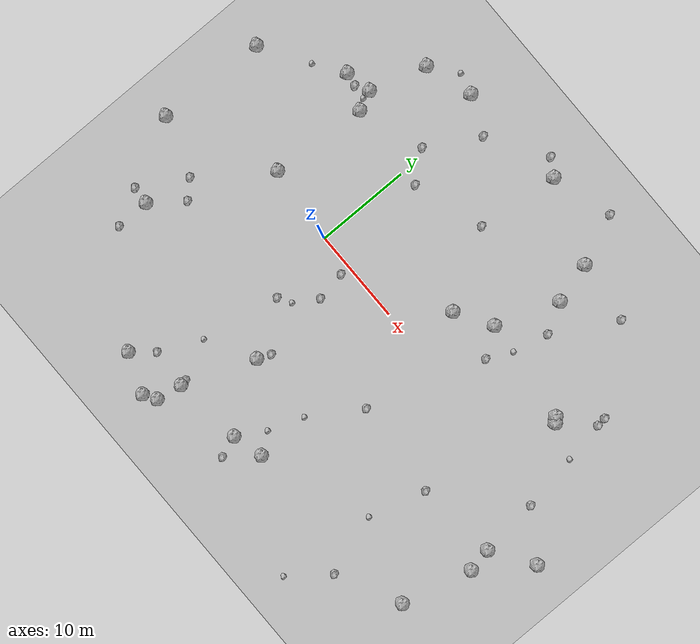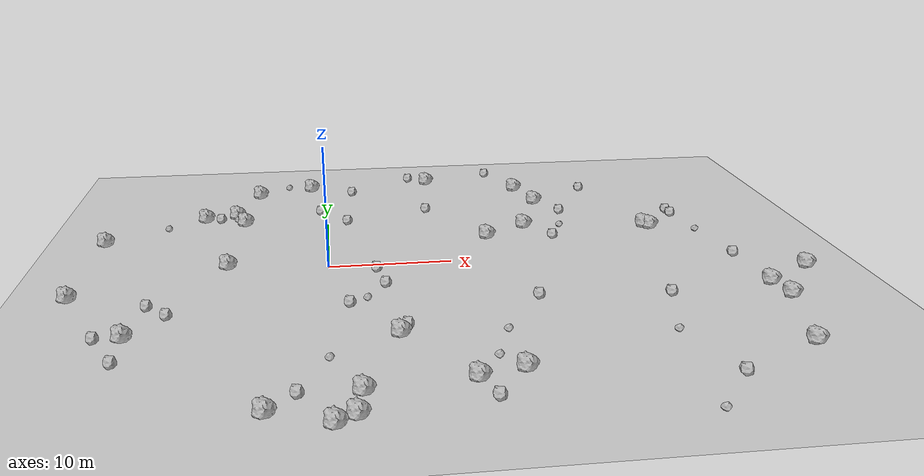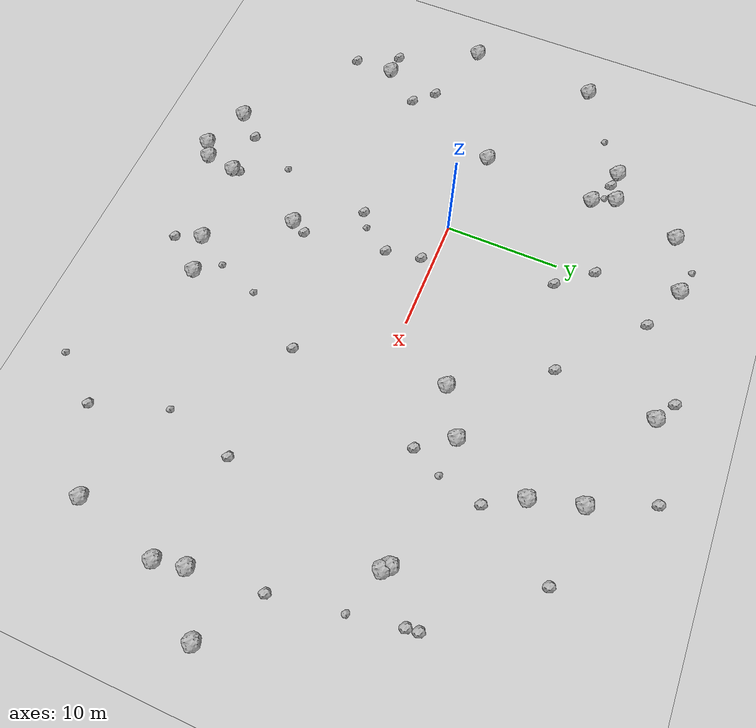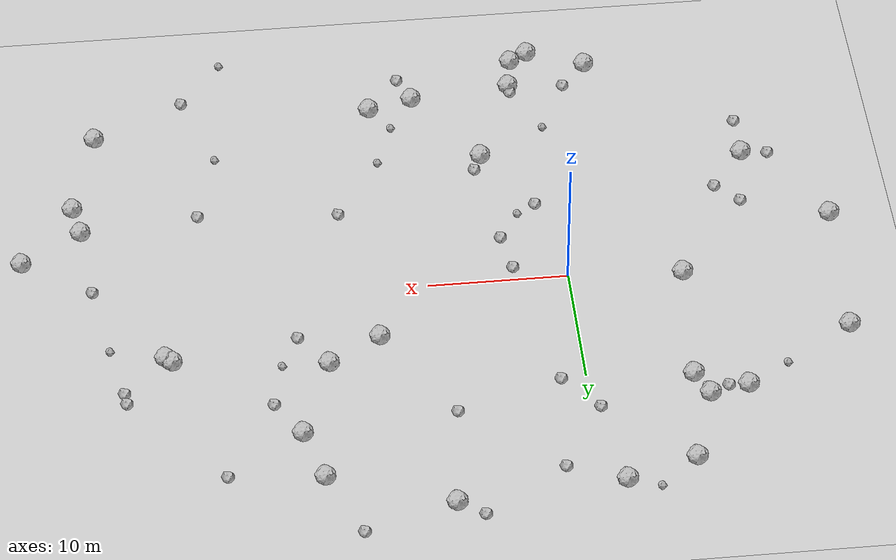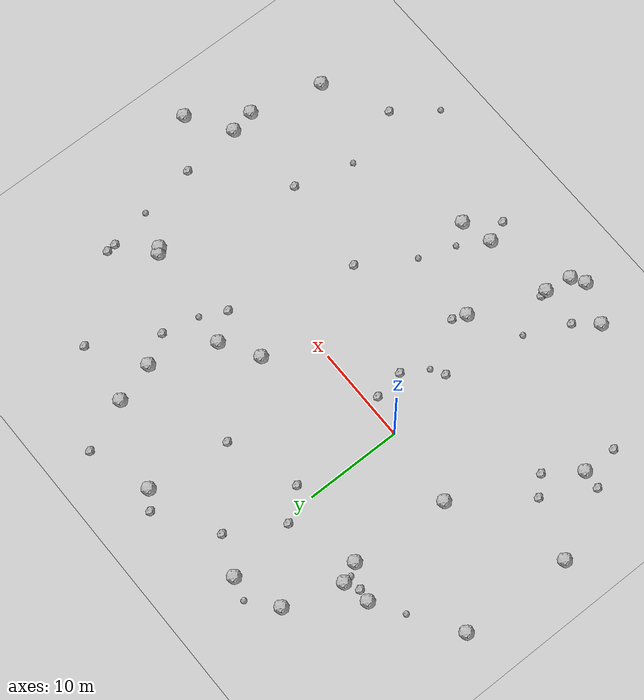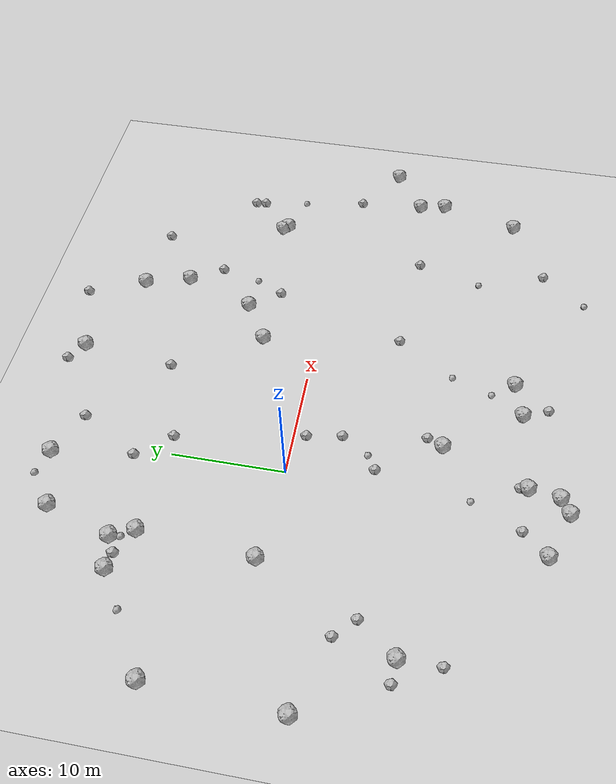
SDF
<sdf version="1.6">
 <world name="default">
  <include><uri>model://custom_ground</uri></include>
  <include><uri>model://sun</uri></include>
  <model name="rock1_0_0">
   <include><uri>model://rock1</uri><pose>-11.027764039563719 12.284014115505343 0.5 0 0 0</pose></include>
  </model>
  <model name="rock1_0_1">
   <include><uri>model://rock1</uri><pose>28.939537956805076 5.736446597086946 0.5 0 0 0</pose></include>
  </model>
  <model name="rock1_0_2">
   <include><uri>model://rock1</uri><pose>-1.5107407961260257 20.366758260181584 0.5 0 0 0</pose></include>
  </model>
  <model name="rock1_0_3">
   <include><uri>model://rock1</uri><pose>0.2570385839010747 -23.85550155937903 0.5 0 0 0</pose></include>
  </model>
  <model name="rock1_0_4">
   <include><uri>model://rock1</uri><pose>1.586014061621853 -23.04541576442167 0.5 0 0 0</pose></include>
  </model>
  <model name="rock1_0_5">
   <include><uri>model://rock1</uri><pose>-8.062970826868872 0.7424308620066782 0.5 0 0 0</pose></include>
  </model>
  <model name="rock1_0_6">
   <include><uri>model://rock1</uri><pose>13.891608856421989 5.073443191869288 0.5 0 0 0</pose></include>
  </model>
  <model name="rock1_0_7">
   <include><uri>model://rock1</uri><pose>2.0278214352170387 -20.346743775395076 0.5 0 0 0</pose></include>
  </model>
  <model name="rock1_0_8">
   <include><uri>model://rock1</uri><pose>38.588197003291874 -4.716279543927307 0.5 0 0 0</pose></include>
  </model>
  <model name="rock1_0_9">
   <include><uri>model://rock1</uri><pose>28.4831234992264 6.19119665853318 0.5 0 0 0</pose></include>
  </model>
  <model name="rock1_0_10">
   <include><uri>model://rock1</uri><pose>-14.068442878592693 -11.358586132357999 0.5 0 0 0</pose></include>
  </model>
  <model name="rock1_0_11">
   <include><uri>model://rock1</uri><pose>4.895437883553807 -12.873714850114805 0.5 0 0 0</pose></include>
  </model>
  <model name="rock1_0_12">
   <include><uri>model://rock1</uri><pose>-7.391547562215173 10.86112403371692 0.5 0 0 0</pose></include>
  </model>
  <model name="rock1_0_13">
   <include><uri>model://rock1</uri><pose>-19.40093982729339 -4.275042283149485 0.5 0 0 0</pose></include>
  </model>
  <model name="rock1_0_14">
   <include><uri>model://rock1</uri><pose>34.745237593558706 -10.069673632421463 0.5 0 0 0</pose></include>
  </model>
  <model name="rock1_0_15">
   <include><uri>model://rock1</uri><pose>10.15944948979963 21.32894314596298 0.5 0 0 0</pose></include>
  </model>
  <model name="rock1_0_16">
   <include><uri>model://rock1</uri><pose>9.331026613413734 -19.568326153727796 0.5 0 0 0</pose></include>
  </model>
  <model name="rock1_0_17">
   <include><uri>model://rock1</uri><pose>-8.274690872943726 12.860050784481224 0.5 0 0 0</pose></include>
  </model>
  <model name="rock1_0_18">
   <include><uri>model://rock1</uri><pose>17.632937537088516 7.346693989860569 0.5 0 0 0</pose></include>
  </model>
  <model name="rock1_0_19">
   <include><uri>model://rock1</uri><pose>12.554505665294208 -18.706540950473986 0.5 0 0 0</pose></include>
  </model>
  <model name="rock1_0_20">
   <include><uri>model://rock1</uri><pose>32.85350191048273 -17.44762869332425 0.5 0 0 0</pose></include>
  </model>
  <model name="rock1_0_21">
   <include><uri>model://rock1</uri><pose>18.788839518924974 18.110436376438862 0.5 0 0 0</pose></include>
  </model>
  <model name="rock1_0_22">
   <include><uri>model://rock1</uri><pose>-3.8858278749136304 -22.21808106653757 0.5 0 0 0</pose></include>
  </model>
  <model name="rock1_0_23">
   <include><uri>model://rock1</uri><pose>34.26534758210676 -7.543714053345834 0.5 0 0 0</pose></include>
  </model>
  <model name="rock1_0_24">
   <include><uri>model://rock1</uri><pose>-18.94947749458981 7.14842963456703 0.5 0 0 0</pose></include>
  </model>
  <model name="rock1_0_25">
   <include><uri>model://rock1</uri><pose>-6.4913171606933915 18.771355914047888 0.5 0 0 0</pose></include>
  </model>
  <model name="rock1_0_26">
   <include><uri>model://rock1</uri><pose>19.976429062862522 13.889876490020256 0.5 0 0 0</pose></include>
  </model>
  <model name="rock2_0_0">
   <include><uri>model://rock2</uri><pose>-11.63903249460002 -8.058631580797233 0.3 0 0 0</pose></include>
  </model>
  <model name="rock2_0_1">
   <include><uri>model://rock2</uri><pose>26.284740418298078 -20.804069318388834 0.3 0 0 0</pose></include>
  </model>
  <model name="rock2_0_2">
   <include><uri>model://rock2</uri><pose>19.61055265498777 4.568744306605829 0.3 0 0 0</pose></include>
  </model>
  <model name="rock2_0_3">
   <include><uri>model://rock2</uri><pose>25.33818112440329 17.43913012056167 0.3 0 0 0</pose></include>
  </model>
  <model name="rock2_0_4">
   <include><uri>model://rock2</uri><pose>2.449323907576993 18.68029120720989 0.3 0 0 0</pose></include>
  </model>
  <model name="rock2_0_5">
   <include><uri>model://rock2</uri><pose>-13.288587860979135 -6.361905748541496 0.3 0 0 0</pose></include>
  </model>
  <model name="rock2_0_6">
   <include><uri>model://rock2</uri><pose>8.351920678366273 22.51527897836027 0.3 0 0 0</pose></include>
  </model>
  <model name="rock2_0_7">
   <include><uri>model://rock2</uri><pose>-14.098320259304673 -14.89463491351524 0.3 0 0 0</pose></include>
  </model>
  <model name="rock2_0_8">
   <include><uri>model://rock2</uri><pose>31.785878052973445 9.83367118325826 0.3 0 0 0</pose></include>
  </model>
  <model name="rock2_0_9">
   <include><uri>model://rock2</uri><pose>4.370575834656371 -4.171433876113856 0.3 0 0 0</pose></include>
  </model>
  <model name="rock2_0_10">
   <include><uri>model://rock2</uri><pose>33.67975759322387 -1.407109420900671 0.3 0 0 0</pose></include>
  </model>
  <model name="rock2_0_11">
   <include><uri>model://rock2</uri><pose>21.712163400593596 10.89432187464 0.3 0 0 0</pose></include>
  </model>
  <model name="rock2_0_12">
   <include><uri>model://rock2</uri><pose>-0.6161595411897558 13.277080820130386 0.3 0 0 0</pose></include>
  </model>
  <model name="rock2_0_13">
   <include><uri>model://rock2</uri><pose>-16.02030685697866 -11.233019874052651 0.3 0 0 0</pose></include>
  </model>
  <model name="rock2_0_14">
   <include><uri>model://rock2</uri><pose>16.579087965963048 23.330777719990223 0.3 0 0 0</pose></include>
  </model>
  <model name="rock2_0_15">
   <include><uri>model://rock2</uri><pose>1.780808796740562 10.354297105642708 0.3 0 0 0</pose></include>
  </model>
  <model name="rock2_0_16">
   <include><uri>model://rock2</uri><pose>25.8109693475485 -8.493878163552672 0.3 0 0 0</pose></include>
  </model>
  <model name="rock2_0_17">
   <include><uri>model://rock2</uri><pose>9.210547826962387 12.78155190674105 0.3 0 0 0</pose></include>
  </model>
  <model name="rock2_0_18">
   <include><uri>model://rock2</uri><pose>10.167003569026363 -21.84647284312875 0.3 0 0 0</pose></include>
  </model>
  <model name="rock2_0_19">
   <include><uri>model://rock2</uri><pose>-9.685283023935751 12.105426964600298 0.3 0 0 0</pose></include>
  </model>
  <model name="rock2_0_20">
   <include><uri>model://rock2</uri><pose>3.8360450990637496 -1.0449101710525106 0.3 0 0 0</pose></include>
  </model>
  <model name="rock2_0_21">
   <include><uri>model://rock2</uri><pose>1.5150532432947088 -7.440881385105641 0.3 0 0 0</pose></include>
  </model>
  <model name="rock2_0_22">
   <include><uri>model://rock2</uri><pose>31.898649528236845 8.85688587566014 0.3 0 0 0</pose></include>
  </model>
  <model name="rock2_0_23">
   <include><uri>model://rock2</uri><pose>5.465736150114992 -11.508060313700554 0.3 0 0 0</pose></include>
  </model>
  <model name="rock2_0_24">
   <include><uri>model://rock2</uri><pose>15.717833623516668 -7.737938853698019 0.3 0 0 0</pose></include>
  </model>
  <model name="rock2_0_25">
   <include><uri>model://rock2</uri><pose>1.9358398595288726 -19.71800000034328 0.3 0 0 0</pose></include>
  </model>
  <model name="rock2_0_26">
   <include><uri>model://rock2</uri><pose>-2.054270555046152 -20.08413246740008 0.3 0 0 0</pose></include>
  </model>
  <model name="rock3_0_0">
   <include><uri>model://rock3</uri><pose>23.200025241243537 -24.910975696291654 0.2 0 0 0</pose></include>
  </model>
  <model name="rock3_0_1">
   <include><uri>model://rock3</uri><pose>11.056410516082465 -16.751649704671465 0.2 0 0 0</pose></include>
  </model>
  <model name="rock3_0_2">
   <include><uri>model://rock3</uri><pose>24.164926043356267 -14.557832058270426 0.2 0 0 0</pose></include>
  </model>
  <model name="rock3_0_3">
   <include><uri>model://rock3</uri><pose>12.365938836094259 -13.07369162155879 0.2 0 0 0</pose></include>
  </model>
  <model name="rock3_0_4">
   <include><uri>model://rock3</uri><pose>-0.05923128286390522 -15.756935803097889 0.2 0 0 0</pose></include>
  </model>
  <model name="rock3_0_5">
   <include><uri>model://rock3</uri><pose>32.68037519654864 4.502699760988804 0.2 0 0 0</pose></include>
  </model>
  <model name="rock3_0_6">
   <include><uri>model://rock3</uri><pose>-3.825713579086102 20.99950647799465 0.2 0 0 0</pose></include>
  </model>
  <model name="rock3_0_7">
   <include><uri>model://rock3</uri><pose>-14.151539511818758 10.235101651465442 0.2 0 0 0</pose></include>
  </model>
  <model name="rock3_0_8">
   <include><uri>model://rock3</uri><pose>20.853631124270485 7.1135003082286445 0.2 0 0 0</pose></include>
  </model>
  <model name="rock3_0_9">
   <include><uri>model://rock3</uri><pose>2.844878124975491 -6.678099283273799 0.2 0 0 0</pose></include>
  </model>
  <model name="rock3_0_10">
   <include><uri>model://rock3</uri><pose>-8.195287841889131 11.921336781768538 0.2 0 0 0</pose></include>
  </model>
 </world>
</sdf>
